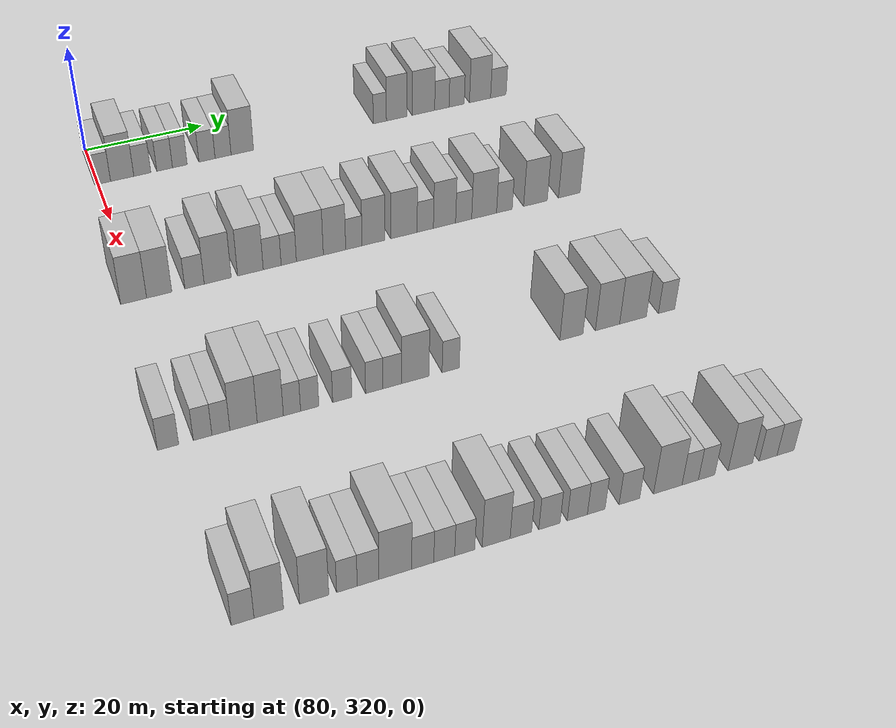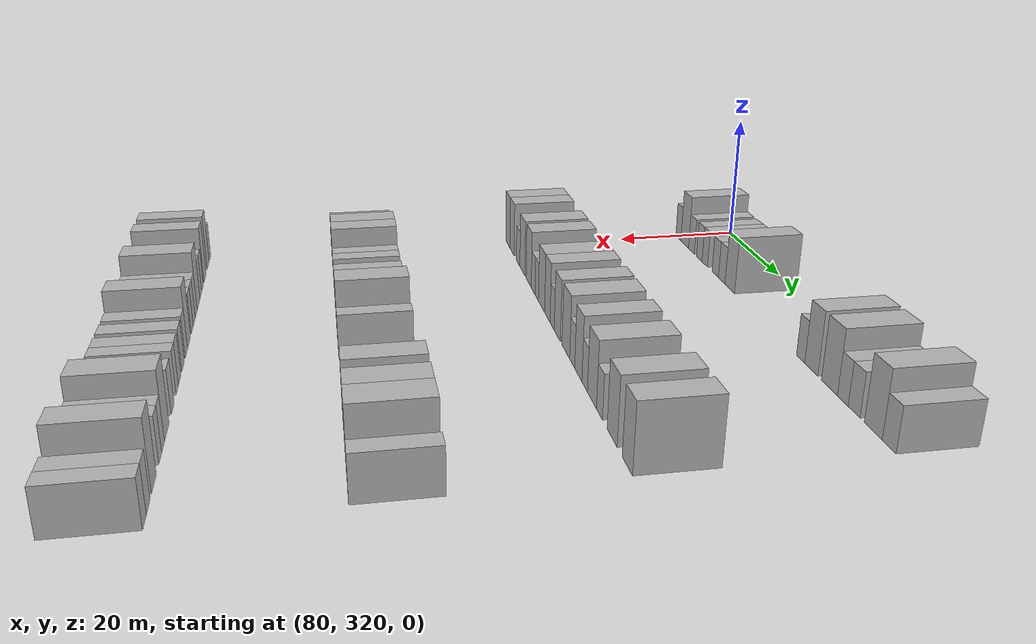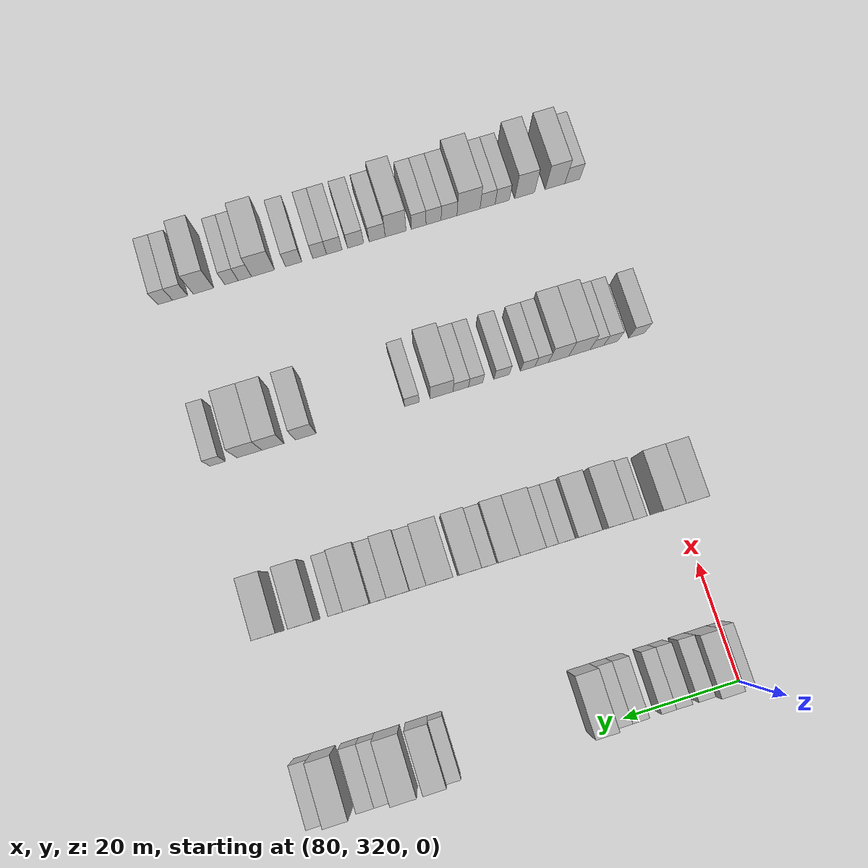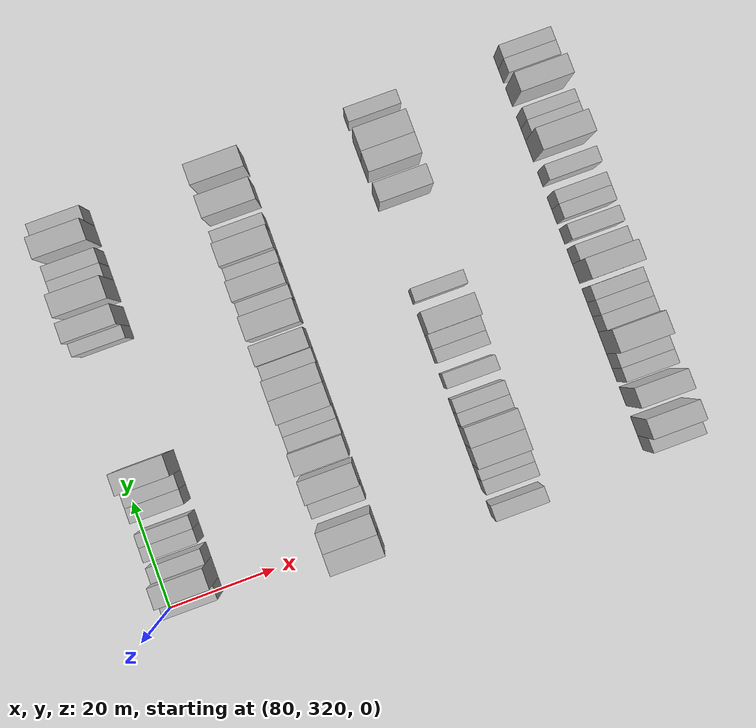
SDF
<sdf version="1.6">
 <world name="default">
  <model name="building_638">
   <static>1</static>
   <pose>85.0000 320.8134 0 0.000000 0.000000 0.000000</pose>
   <link name="link">
    <pose>0 0 3.00 0 0 0</pose>
    <collision name="collision"><geometry><box><size>10.0000 2.6389 6.0000</size></box></geometry></collision>
    <visual name="visual">
     <cast_shadows>0</cast_shadows>
     <geometry><box><size>10.0000 2.6389 6.0000</size></box></geometry>
     <material>
      <script>
       <uri>model://HANNAS_wall/materials/scripts</uri>
       <uri>model://HANNAS_wall/materials/textures</uri>
       <name>vrc/HANNAS_wall</name>
      </script>
     </material>
    </visual>
   </link>
  </model>
  <model name="building_639">
   <static>1</static>
   <pose>85.0000 324.0642 0 0.000000 0.000000 0.000000</pose>
   <link name="link">
    <pose>0 0 4.50 0 0 0</pose>
    <collision name="collision"><geometry><box><size>10.0000 3.8629 9.0000</size></box></geometry></collision>
    <visual name="visual">
     <cast_shadows>0</cast_shadows>
     <geometry><box><size>10.0000 3.8629 9.0000</size></box></geometry>
     <material>
      <script>
       <uri>model://HANNAS_wall/materials/scripts</uri>
       <uri>model://HANNAS_wall/materials/textures</uri>
       <name>vrc/HANNAS_wall</name>
      </script>
     </material>
    </visual>
   </link>
  </model>
  <model name="building_640">
   <static>1</static>
   <pose>85.0000 327.4183 0 0.000000 0.000000 0.000000</pose>
   <link name="link">
    <pose>0 0 3.00 0 0 0</pose>
    <collision name="collision"><geometry><box><size>10.0000 2.8453 6.0000</size></box></geometry></collision>
    <visual name="visual">
     <cast_shadows>0</cast_shadows>
     <geometry><box><size>10.0000 2.8453 6.0000</size></box></geometry>
     <material>
      <script>
       <uri>model://HANNAS_wall/materials/scripts</uri>
       <uri>model://HANNAS_wall/materials/textures</uri>
       <name>vrc/HANNAS_wall</name>
      </script>
     </material>
    </visual>
   </link>
  </model>
  <model name="building_641">
   <static>1</static>
   <pose>85.0000 331.1667 0 0.000000 0.000000 0.000000</pose>
   <link name="link">
    <pose>0 0 3.00 0 0 0</pose>
    <collision name="collision"><geometry><box><size>10.0000 2.6513 6.0000</size></box></geometry></collision>
    <visual name="visual">
     <cast_shadows>0</cast_shadows>
     <geometry><box><size>10.0000 2.6513 6.0000</size></box></geometry>
     <material>
      <script>
       <uri>model://HANNAS_wall/materials/scripts</uri>
       <uri>model://HANNAS_wall/materials/textures</uri>
       <name>vrc/HANNAS_wall</name>
      </script>
     </material>
    </visual>
   </link>
  </model>
  <model name="building_642">
   <static>1</static>
   <pose>85.0000 333.7397 0 0.000000 0.000000 0.000000</pose>
   <link name="link">
    <pose>0 0 3.00 0 0 0</pose>
    <collision name="collision"><geometry><box><size>10.0000 2.4948 6.0000</size></box></geometry></collision>
    <visual name="visual">
     <cast_shadows>0</cast_shadows>
     <geometry><box><size>10.0000 2.4948 6.0000</size></box></geometry>
     <material>
      <script>
       <uri>model://HANNAS_wall/materials/scripts</uri>
       <uri>model://HANNAS_wall/materials/textures</uri>
       <name>vrc/HANNAS_wall</name>
      </script>
     </material>
    </visual>
   </link>
  </model>
  <model name="building_643">
   <static>1</static>
   <pose>85.0000 338.3796 0 0.000000 0.000000 0.000000</pose>
   <link name="link">
    <pose>0 0 3.00 0 0 0</pose>
    <collision name="collision"><geometry><box><size>10.0000 2.7849 6.0000</size></box></geometry></collision>
    <visual name="visual">
     <cast_shadows>0</cast_shadows>
     <geometry><box><size>10.0000 2.7849 6.0000</size></box></geometry>
     <material>
      <script>
       <uri>model://HANNAS_wall/materials/scripts</uri>
       <uri>model://HANNAS_wall/materials/textures</uri>
       <name>vrc/HANNAS_wall</name>
      </script>
     </material>
    </visual>
   </link>
  </model>
  <model name="building_644">
   <static>1</static>
   <pose>85.0000 341.1564 0 0.000000 0.000000 0.000000</pose>
   <link name="link">
    <pose>0 0 3.00 0 0 0</pose>
    <collision name="collision"><geometry><box><size>10.0000 2.7686 6.0000</size></box></geometry></collision>
    <visual name="visual">
     <cast_shadows>0</cast_shadows>
     <geometry><box><size>10.0000 2.7686 6.0000</size></box></geometry>
     <material>
      <script>
       <uri>model://HANNAS_wall/materials/scripts</uri>
       <uri>model://HANNAS_wall/materials/textures</uri>
       <name>vrc/HANNAS_wall</name>
      </script>
     </material>
    </visual>
   </link>
  </model>
  <model name="building_645">
   <static>1</static>
   <pose>85.0000 344.4911 0 0.000000 0.000000 0.000000</pose>
   <link name="link">
    <pose>0 0 4.50 0 0 0</pose>
    <collision name="collision"><geometry><box><size>10.0000 3.9009 9.0000</size></box></geometry></collision>
    <visual name="visual">
     <cast_shadows>0</cast_shadows>
     <geometry><box><size>10.0000 3.9009 9.0000</size></box></geometry>
     <material>
      <script>
       <uri>model://HANNAS_wall/materials/scripts</uri>
       <uri>model://HANNAS_wall/materials/textures</uri>
       <name>vrc/HANNAS_wall</name>
      </script>
     </material>
    </visual>
   </link>
  </model>
  <model name="building_646">
   <static>1</static>
   <pose>85.0000 369.0881 0 0.000000 0.000000 0.000000</pose>
   <link name="link">
    <pose>0 0 3.00 0 0 0</pose>
    <collision name="collision"><geometry><box><size>10.0000 2.4310 6.0000</size></box></geometry></collision>
    <visual name="visual">
     <cast_shadows>0</cast_shadows>
     <geometry><box><size>10.0000 2.4310 6.0000</size></box></geometry>
     <material>
      <script>
       <uri>model://HANNAS_wall/materials/scripts</uri>
       <uri>model://HANNAS_wall/materials/textures</uri>
       <name>vrc/HANNAS_wall</name>
      </script>
     </material>
    </visual>
   </link>
  </model>
  <model name="building_647">
   <static>1</static>
   <pose>85.0000 372.1774 0 0.000000 0.000000 0.000000</pose>
   <link name="link">
    <pose>0 0 4.50 0 0 0</pose>
    <collision name="collision"><geometry><box><size>10.0000 3.7474 9.0000</size></box></geometry></collision>
    <visual name="visual">
     <cast_shadows>0</cast_shadows>
     <geometry><box><size>10.0000 3.7474 9.0000</size></box></geometry>
     <material>
      <script>
       <uri>model://HANNAS_wall/materials/scripts</uri>
       <uri>model://HANNAS_wall/materials/textures</uri>
       <name>vrc/HANNAS_wall</name>
      </script>
     </material>
    </visual>
   </link>
  </model>
  <model name="building_648">
   <static>1</static>
   <pose>85.0000 377.1681 0 0.000000 0.000000 0.000000</pose>
   <link name="link">
    <pose>0 0 4.50 0 0 0</pose>
    <collision name="collision"><geometry><box><size>10.0000 4.2341 9.0000</size></box></geometry></collision>
    <visual name="visual">
     <cast_shadows>0</cast_shadows>
     <geometry><box><size>10.0000 4.2341 9.0000</size></box></geometry>
     <material>
      <script>
       <uri>model://HANNAS_wall/materials/scripts</uri>
       <uri>model://HANNAS_wall/materials/textures</uri>
       <name>vrc/HANNAS_wall</name>
      </script>
     </material>
    </visual>
   </link>
  </model>
  <model name="building_649">
   <static>1</static>
   <pose>85.0000 380.6390 0 0.000000 0.000000 0.000000</pose>
   <link name="link">
    <pose>0 0 3.00 0 0 0</pose>
    <collision name="collision"><geometry><box><size>10.0000 2.7076 6.0000</size></box></geometry></collision>
    <visual name="visual">
     <cast_shadows>0</cast_shadows>
     <geometry><box><size>10.0000 2.7076 6.0000</size></box></geometry>
     <material>
      <script>
       <uri>model://HANNAS_wall/materials/scripts</uri>
       <uri>model://HANNAS_wall/materials/textures</uri>
       <name>vrc/HANNAS_wall</name>
      </script>
     </material>
    </visual>
   </link>
  </model>
  <model name="building_650">
   <static>1</static>
   <pose>85.0000 383.4345 0 0.000000 0.000000 0.000000</pose>
   <link name="link">
    <pose>0 0 3.00 0 0 0</pose>
    <collision name="collision"><geometry><box><size>10.0000 2.8833 6.0000</size></box></geometry></collision>
    <visual name="visual">
     <cast_shadows>0</cast_shadows>
     <geometry><box><size>10.0000 2.8833 6.0000</size></box></geometry>
     <material>
      <script>
       <uri>model://HANNAS_wall/materials/scripts</uri>
       <uri>model://HANNAS_wall/materials/textures</uri>
       <name>vrc/HANNAS_wall</name>
      </script>
     </material>
    </visual>
   </link>
  </model>
  <model name="building_651">
   <static>1</static>
   <pose>85.0000 387.8967 0 0.000000 0.000000 0.000000</pose>
   <link name="link">
    <pose>0 0 4.50 0 0 0</pose>
    <collision name="collision"><geometry><box><size>10.0000 4.0411 9.0000</size></box></geometry></collision>
    <visual name="visual">
     <cast_shadows>0</cast_shadows>
     <geometry><box><size>10.0000 4.0411 9.0000</size></box></geometry>
     <material>
      <script>
       <uri>model://HANNAS_wall/materials/scripts</uri>
       <uri>model://HANNAS_wall/materials/textures</uri>
       <name>vrc/HANNAS_wall</name>
      </script>
     </material>
    </visual>
   </link>
  </model>
  <model name="building_652">
   <static>1</static>
   <pose>85.0000 391.4169 0 0.000000 0.000000 0.000000</pose>
   <link name="link">
    <pose>0 0 3.00 0 0 0</pose>
    <collision name="collision"><geometry><box><size>10.0000 2.9995 6.0000</size></box></geometry></collision>
    <visual name="visual">
     <cast_shadows>0</cast_shadows>
     <geometry><box><size>10.0000 2.9995 6.0000</size></box></geometry>
     <material>
      <script>
       <uri>model://HANNAS_wall/materials/scripts</uri>
       <uri>model://HANNAS_wall/materials/textures</uri>
       <name>vrc/HANNAS_wall</name>
      </script>
     </material>
    </visual>
   </link>
  </model>
  <model name="building_860">
   <static>1</static>
   <pose>115.0000 319.0951 0 0.000000 0.000000 0.000000</pose>
   <link name="link">
    <pose>0 0 4.50 0 0 0</pose>
    <collision name="collision"><geometry><box><size>10.0000 3.9156 9.0000</size></box></geometry></collision>
    <visual name="visual">
     <cast_shadows>0</cast_shadows>
     <geometry><box><size>10.0000 3.9156 9.0000</size></box></geometry>
     <material>
      <script>
       <uri>model://HANNAS_wall/materials/scripts</uri>
       <uri>model://HANNAS_wall/materials/textures</uri>
       <name>vrc/HANNAS_wall</name>
      </script>
     </material>
    </visual>
   </link>
  </model>
  <model name="building_861">
   <static>1</static>
   <pose>115.0000 322.9667 0 0.000000 0.000000 0.000000</pose>
   <link name="link">
    <pose>0 0 4.50 0 0 0</pose>
    <collision name="collision"><geometry><box><size>10.0000 3.8276 9.0000</size></box></geometry></collision>
    <visual name="visual">
     <cast_shadows>0</cast_shadows>
     <geometry><box><size>10.0000 3.8276 9.0000</size></box></geometry>
     <material>
      <script>
       <uri>model://HANNAS_wall/materials/scripts</uri>
       <uri>model://HANNAS_wall/materials/textures</uri>
       <name>vrc/HANNAS_wall</name>
      </script>
     </material>
    </visual>
   </link>
  </model>
  <model name="building_862">
   <static>1</static>
   <pose>115.0000 328.3688 0 0.000000 0.000000 0.000000</pose>
   <link name="link">
    <pose>0 0 3.00 0 0 0</pose>
    <collision name="collision"><geometry><box><size>10.0000 2.9766 6.0000</size></box></geometry></collision>
    <visual name="visual">
     <cast_shadows>0</cast_shadows>
     <geometry><box><size>10.0000 2.9766 6.0000</size></box></geometry>
     <material>
      <script>
       <uri>model://HANNAS_wall/materials/scripts</uri>
       <uri>model://HANNAS_wall/materials/textures</uri>
       <name>vrc/HANNAS_wall</name>
      </script>
     </material>
    </visual>
   </link>
  </model>
  <model name="building_863">
   <static>1</static>
   <pose>115.0000 331.9577 0 0.000000 0.000000 0.000000</pose>
   <link name="link">
    <pose>0 0 4.50 0 0 0</pose>
    <collision name="collision"><geometry><box><size>10.0000 4.2013 9.0000</size></box></geometry></collision>
    <visual name="visual">
     <cast_shadows>0</cast_shadows>
     <geometry><box><size>10.0000 4.2013 9.0000</size></box></geometry>
     <material>
      <script>
       <uri>model://HANNAS_wall/materials/scripts</uri>
       <uri>model://HANNAS_wall/materials/textures</uri>
       <name>vrc/HANNAS_wall</name>
      </script>
     </material>
    </visual>
   </link>
  </model>
  <model name="building_864">
   <static>1</static>
   <pose>115.0000 337.0785 0 0.000000 0.000000 0.000000</pose>
   <link name="link">
    <pose>0 0 4.50 0 0 0</pose>
    <collision name="collision"><geometry><box><size>10.0000 4.0403 9.0000</size></box></geometry></collision>
    <visual name="visual">
     <cast_shadows>0</cast_shadows>
     <geometry><box><size>10.0000 4.0403 9.0000</size></box></geometry>
     <material>
      <script>
       <uri>model://HANNAS_wall/materials/scripts</uri>
       <uri>model://HANNAS_wall/materials/textures</uri>
       <name>vrc/HANNAS_wall</name>
      </script>
     </material>
    </visual>
   </link>
  </model>
  <model name="building_865">
   <static>1</static>
   <pose>115.0000 340.5196 0 0.000000 0.000000 0.000000</pose>
   <link name="link">
    <pose>0 0 3.00 0 0 0</pose>
    <collision name="collision"><geometry><box><size>10.0000 2.8419 6.0000</size></box></geometry></collision>
    <visual name="visual">
     <cast_shadows>0</cast_shadows>
     <geometry><box><size>10.0000 2.8419 6.0000</size></box></geometry>
     <material>
      <script>
       <uri>model://HANNAS_wall/materials/scripts</uri>
       <uri>model://HANNAS_wall/materials/textures</uri>
       <name>vrc/HANNAS_wall</name>
      </script>
     </material>
    </visual>
   </link>
  </model>
  <model name="building_866">
   <static>1</static>
   <pose>115.0000 343.1594 0 0.000000 0.000000 0.000000</pose>
   <link name="link">
    <pose>0 0 3.00 0 0 0</pose>
    <collision name="collision"><geometry><box><size>10.0000 2.4377 6.0000</size></box></geometry></collision>
    <visual name="visual">
     <cast_shadows>0</cast_shadows>
     <geometry><box><size>10.0000 2.4377 6.0000</size></box></geometry>
     <material>
      <script>
       <uri>model://HANNAS_wall/materials/scripts</uri>
       <uri>model://HANNAS_wall/materials/textures</uri>
       <name>vrc/HANNAS_wall</name>
      </script>
     </material>
    </visual>
   </link>
  </model>
  <model name="building_867">
   <static>1</static>
   <pose>115.0000 346.5483 0 0.000000 0.000000 0.000000</pose>
   <link name="link">
    <pose>0 0 4.50 0 0 0</pose>
    <collision name="collision"><geometry><box><size>10.0000 4.3402 9.0000</size></box></geometry></collision>
    <visual name="visual">
     <cast_shadows>0</cast_shadows>
     <geometry><box><size>10.0000 4.3402 9.0000</size></box></geometry>
     <material>
      <script>
       <uri>model://HANNAS_wall/materials/scripts</uri>
       <uri>model://HANNAS_wall/materials/textures</uri>
       <name>vrc/HANNAS_wall</name>
      </script>
     </material>
    </visual>
   </link>
  </model>
  <model name="building_868">
   <static>1</static>
   <pose>115.0000 350.5420 0 0.000000 0.000000 0.000000</pose>
   <link name="link">
    <pose>0 0 4.50 0 0 0</pose>
    <collision name="collision"><geometry><box><size>10.0000 3.6472 9.0000</size></box></geometry></collision>
    <visual name="visual">
     <cast_shadows>0</cast_shadows>
     <geometry><box><size>10.0000 3.6472 9.0000</size></box></geometry>
     <material>
      <script>
       <uri>model://HANNAS_wall/materials/scripts</uri>
       <uri>model://HANNAS_wall/materials/textures</uri>
       <name>vrc/HANNAS_wall</name>
      </script>
     </material>
    </visual>
   </link>
  </model>
  <model name="building_869">
   <static>1</static>
   <pose>115.0000 353.7113 0 0.000000 0.000000 0.000000</pose>
   <link name="link">
    <pose>0 0 3.00 0 0 0</pose>
    <collision name="collision"><geometry><box><size>10.0000 2.6912 6.0000</size></box></geometry></collision>
    <visual name="visual">
     <cast_shadows>0</cast_shadows>
     <geometry><box><size>10.0000 2.6912 6.0000</size></box></geometry>
     <material>
      <script>
       <uri>model://HANNAS_wall/materials/scripts</uri>
       <uri>model://HANNAS_wall/materials/textures</uri>
       <name>vrc/HANNAS_wall</name>
      </script>
     </material>
    </visual>
   </link>
  </model>
  <model name="building_870">
   <static>1</static>
   <pose>115.0000 356.9278 0 0.000000 0.000000 0.000000</pose>
   <link name="link">
    <pose>0 0 4.50 0 0 0</pose>
    <collision name="collision"><geometry><box><size>10.0000 3.7419 9.0000</size></box></geometry></collision>
    <visual name="visual">
     <cast_shadows>0</cast_shadows>
     <geometry><box><size>10.0000 3.7419 9.0000</size></box></geometry>
     <material>
      <script>
       <uri>model://HANNAS_wall/materials/scripts</uri>
       <uri>model://HANNAS_wall/materials/textures</uri>
       <name>vrc/HANNAS_wall</name>
      </script>
     </material>
    </visual>
   </link>
  </model>
  <model name="building_871">
   <static>1</static>
   <pose>115.0000 361.9987 0 0.000000 0.000000 0.000000</pose>
   <link name="link">
    <pose>0 0 4.50 0 0 0</pose>
    <collision name="collision"><geometry><box><size>10.0000 4.3998 9.0000</size></box></geometry></collision>
    <visual name="visual">
     <cast_shadows>0</cast_shadows>
     <geometry><box><size>10.0000 4.3998 9.0000</size></box></geometry>
     <material>
      <script>
       <uri>model://HANNAS_wall/materials/scripts</uri>
       <uri>model://HANNAS_wall/materials/textures</uri>
       <name>vrc/HANNAS_wall</name>
      </script>
     </material>
    </visual>
   </link>
  </model>
  <model name="building_872">
   <static>1</static>
   <pose>115.0000 365.5794 0 0.000000 0.000000 0.000000</pose>
   <link name="link">
    <pose>0 0 3.00 0 0 0</pose>
    <collision name="collision"><geometry><box><size>10.0000 2.7616 6.0000</size></box></geometry></collision>
    <visual name="visual">
     <cast_shadows>0</cast_shadows>
     <geometry><box><size>10.0000 2.7616 6.0000</size></box></geometry>
     <material>
      <script>
       <uri>model://HANNAS_wall/materials/scripts</uri>
       <uri>model://HANNAS_wall/materials/textures</uri>
       <name>vrc/HANNAS_wall</name>
      </script>
     </material>
    </visual>
   </link>
  </model>
  <model name="building_873">
   <static>1</static>
   <pose>115.0000 368.8501 0 0.000000 0.000000 0.000000</pose>
   <link name="link">
    <pose>0 0 4.50 0 0 0</pose>
    <collision name="collision"><geometry><box><size>10.0000 3.7798 9.0000</size></box></geometry></collision>
    <visual name="visual">
     <cast_shadows>0</cast_shadows>
     <geometry><box><size>10.0000 3.7798 9.0000</size></box></geometry>
     <material>
      <script>
       <uri>model://HANNAS_wall/materials/scripts</uri>
       <uri>model://HANNAS_wall/materials/textures</uri>
       <name>vrc/HANNAS_wall</name>
      </script>
     </material>
    </visual>
   </link>
  </model>
  <model name="building_874">
   <static>1</static>
   <pose>115.0000 372.1155 0 0.000000 0.000000 0.000000</pose>
   <link name="link">
    <pose>0 0 3.00 0 0 0</pose>
    <collision name="collision"><geometry><box><size>10.0000 2.7510 6.0000</size></box></geometry></collision>
    <visual name="visual">
     <cast_shadows>0</cast_shadows>
     <geometry><box><size>10.0000 2.7510 6.0000</size></box></geometry>
     <material>
      <script>
       <uri>model://HANNAS_wall/materials/scripts</uri>
       <uri>model://HANNAS_wall/materials/textures</uri>
       <name>vrc/HANNAS_wall</name>
      </script>
     </material>
    </visual>
   </link>
  </model>
  <model name="building_875">
   <static>1</static>
   <pose>115.0000 375.6452 0 0.000000 0.000000 0.000000</pose>
   <link name="link">
    <pose>0 0 4.50 0 0 0</pose>
    <collision name="collision"><geometry><box><size>10.0000 4.3083 9.0000</size></box></geometry></collision>
    <visual name="visual">
     <cast_shadows>0</cast_shadows>
     <geometry><box><size>10.0000 4.3083 9.0000</size></box></geometry>
     <material>
      <script>
       <uri>model://HANNAS_wall/materials/scripts</uri>
       <uri>model://HANNAS_wall/materials/textures</uri>
       <name>vrc/HANNAS_wall</name>
      </script>
     </material>
    </visual>
   </link>
  </model>
  <model name="building_876">
   <static>1</static>
   <pose>115.0000 379.1656 0 0.000000 0.000000 0.000000</pose>
   <link name="link">
    <pose>0 0 3.00 0 0 0</pose>
    <collision name="collision"><geometry><box><size>10.0000 2.7325 6.0000</size></box></geometry></collision>
    <visual name="visual">
     <cast_shadows>0</cast_shadows>
     <geometry><box><size>10.0000 2.7325 6.0000</size></box></geometry>
     <material>
      <script>
       <uri>model://HANNAS_wall/materials/scripts</uri>
       <uri>model://HANNAS_wall/materials/textures</uri>
       <name>vrc/HANNAS_wall</name>
      </script>
     </material>
    </visual>
   </link>
  </model>
  <model name="building_877">
   <static>1</static>
   <pose>115.0000 384.6185 0 0.000000 0.000000 0.000000</pose>
   <link name="link">
    <pose>0 0 4.50 0 0 0</pose>
    <collision name="collision"><geometry><box><size>10.0000 4.1733 9.0000</size></box></geometry></collision>
    <visual name="visual">
     <cast_shadows>0</cast_shadows>
     <geometry><box><size>10.0000 4.1733 9.0000</size></box></geometry>
     <material>
      <script>
       <uri>model://HANNAS_wall/materials/scripts</uri>
       <uri>model://HANNAS_wall/materials/textures</uri>
       <name>vrc/HANNAS_wall</name>
      </script>
     </material>
    </visual>
   </link>
  </model>
  <model name="building_878">
   <static>1</static>
   <pose>115.0000 390.6435 0 0.000000 0.000000 0.000000</pose>
   <link name="link">
    <pose>0 0 4.50 0 0 0</pose>
    <collision name="collision"><geometry><box><size>10.0000 3.8768 9.0000</size></box></geometry></collision>
    <visual name="visual">
     <cast_shadows>0</cast_shadows>
     <geometry><box><size>10.0000 3.8768 9.0000</size></box></geometry>
     <material>
      <script>
       <uri>model://HANNAS_wall/materials/scripts</uri>
       <uri>model://HANNAS_wall/materials/textures</uri>
       <name>vrc/HANNAS_wall</name>
      </script>
     </material>
    </visual>
   </link>
  </model>
  <model name="building_1084">
   <static>1</static>
   <pose>145.0000 316.8757 0 0.000000 0.000000 0.000000</pose>
   <link name="link">
    <pose>0 0 3.00 0 0 0</pose>
    <collision name="collision"><geometry><box><size>10.0000 2.8873 6.0000</size></box></geometry></collision>
    <visual name="visual">
     <cast_shadows>0</cast_shadows>
     <geometry><box><size>10.0000 2.8873 6.0000</size></box></geometry>
     <material>
      <script>
       <uri>model://HANNAS_wall/materials/scripts</uri>
       <uri>model://HANNAS_wall/materials/textures</uri>
       <name>vrc/HANNAS_wall</name>
      </script>
     </material>
    </visual>
   </link>
  </model>
  <model name="building_1085">
   <static>1</static>
   <pose>145.0000 321.6036 0 0.000000 0.000000 0.000000</pose>
   <link name="link">
    <pose>0 0 3.00 0 0 0</pose>
    <collision name="collision"><geometry><box><size>10.0000 2.5685 6.0000</size></box></geometry></collision>
    <visual name="visual">
     <cast_shadows>0</cast_shadows>
     <geometry><box><size>10.0000 2.5685 6.0000</size></box></geometry>
     <material>
      <script>
       <uri>model://HANNAS_wall/materials/scripts</uri>
       <uri>model://HANNAS_wall/materials/textures</uri>
       <name>vrc/HANNAS_wall</name>
      </script>
     </material>
    </visual>
   </link>
  </model>
  <model name="building_1086">
   <static>1</static>
   <pose>145.0000 324.1308 0 0.000000 0.000000 0.000000</pose>
   <link name="link">
    <pose>0 0 3.00 0 0 0</pose>
    <collision name="collision"><geometry><box><size>10.0000 2.4858 6.0000</size></box></geometry></collision>
    <visual name="visual">
     <cast_shadows>0</cast_shadows>
     <geometry><box><size>10.0000 2.4858 6.0000</size></box></geometry>
     <material>
      <script>
       <uri>model://HANNAS_wall/materials/scripts</uri>
       <uri>model://HANNAS_wall/materials/textures</uri>
       <name>vrc/HANNAS_wall</name>
      </script>
     </material>
    </visual>
   </link>
  </model>
  <model name="building_1087">
   <static>1</static>
   <pose>145.0000 327.2934 0 0.000000 0.000000 0.000000</pose>
   <link name="link">
    <pose>0 0 4.50 0 0 0</pose>
    <collision name="collision"><geometry><box><size>10.0000 3.8396 9.0000</size></box></geometry></collision>
    <visual name="visual">
     <cast_shadows>0</cast_shadows>
     <geometry><box><size>10.0000 3.8396 9.0000</size></box></geometry>
     <material>
      <script>
       <uri>model://HANNAS_wall/materials/scripts</uri>
       <uri>model://HANNAS_wall/materials/textures</uri>
       <name>vrc/HANNAS_wall</name>
      </script>
     </material>
    </visual>
   </link>
  </model>
  <model name="building_1088">
   <static>1</static>
   <pose>145.0000 331.0576 0 0.000000 0.000000 0.000000</pose>
   <link name="link">
    <pose>0 0 4.50 0 0 0</pose>
    <collision name="collision"><geometry><box><size>10.0000 3.6888 9.0000</size></box></geometry></collision>
    <visual name="visual">
     <cast_shadows>0</cast_shadows>
     <geometry><box><size>10.0000 3.6888 9.0000</size></box></geometry>
     <material>
      <script>
       <uri>model://HANNAS_wall/materials/scripts</uri>
       <uri>model://HANNAS_wall/materials/textures</uri>
       <name>vrc/HANNAS_wall</name>
      </script>
     </material>
    </visual>
   </link>
  </model>
  <model name="building_1089">
   <static>1</static>
   <pose>145.0000 334.1280 0 0.000000 0.000000 0.000000</pose>
   <link name="link">
    <pose>0 0 3.00 0 0 0</pose>
    <collision name="collision"><geometry><box><size>10.0000 2.4520 6.0000</size></box></geometry></collision>
    <visual name="visual">
     <cast_shadows>0</cast_shadows>
     <geometry><box><size>10.0000 2.4520 6.0000</size></box></geometry>
     <material>
      <script>
       <uri>model://HANNAS_wall/materials/scripts</uri>
       <uri>model://HANNAS_wall/materials/textures</uri>
       <name>vrc/HANNAS_wall</name>
      </script>
     </material>
    </visual>
   </link>
  </model>
  <model name="building_1090">
   <static>1</static>
   <pose>145.0000 336.6666 0 0.000000 0.000000 0.000000</pose>
   <link name="link">
    <pose>0 0 3.00 0 0 0</pose>
    <collision name="collision"><geometry><box><size>10.0000 2.6251 6.0000</size></box></geometry></collision>
    <visual name="visual">
     <cast_shadows>0</cast_shadows>
     <geometry><box><size>10.0000 2.6251 6.0000</size></box></geometry>
     <material>
      <script>
       <uri>model://HANNAS_wall/materials/scripts</uri>
       <uri>model://HANNAS_wall/materials/textures</uri>
       <name>vrc/HANNAS_wall</name>
      </script>
     </material>
    </visual>
   </link>
  </model>
  <model name="building_1091">
   <static>1</static>
   <pose>145.0000 341.3764 0 0.000000 0.000000 0.000000</pose>
   <link name="link">
    <pose>0 0 3.00 0 0 0</pose>
    <collision name="collision"><geometry><box><size>10.0000 2.7947 6.0000</size></box></geometry></collision>
    <visual name="visual">
     <cast_shadows>0</cast_shadows>
     <geometry><box><size>10.0000 2.7947 6.0000</size></box></geometry>
     <material>
      <script>
       <uri>model://HANNAS_wall/materials/scripts</uri>
       <uri>model://HANNAS_wall/materials/textures</uri>
       <name>vrc/HANNAS_wall</name>
      </script>
     </material>
    </visual>
   </link>
  </model>
  <model name="building_1092">
   <static>1</static>
   <pose>145.0000 346.0486 0 0.000000 0.000000 0.000000</pose>
   <link name="link">
    <pose>0 0 3.00 0 0 0</pose>
    <collision name="collision"><geometry><box><size>10.0000 2.5498 6.0000</size></box></geometry></collision>
    <visual name="visual">
     <cast_shadows>0</cast_shadows>
     <geometry><box><size>10.0000 2.5498 6.0000</size></box></geometry>
     <material>
      <script>
       <uri>model://HANNAS_wall/materials/scripts</uri>
       <uri>model://HANNAS_wall/materials/textures</uri>
       <name>vrc/HANNAS_wall</name>
      </script>
     </material>
    </visual>
   </link>
  </model>
  <model name="building_1093">
   <static>1</static>
   <pose>145.0000 348.7180 0 0.000000 0.000000 0.000000</pose>
   <link name="link">
    <pose>0 0 3.00 0 0 0</pose>
    <collision name="collision"><geometry><box><size>10.0000 2.7890 6.0000</size></box></geometry></collision>
    <visual name="visual">
     <cast_shadows>0</cast_shadows>
     <geometry><box><size>10.0000 2.7890 6.0000</size></box></geometry>
     <material>
      <script>
       <uri>model://HANNAS_wall/materials/scripts</uri>
       <uri>model://HANNAS_wall/materials/textures</uri>
       <name>vrc/HANNAS_wall</name>
      </script>
     </material>
    </visual>
   </link>
  </model>
  <model name="building_1094">
   <static>1</static>
   <pose>145.0000 352.1489 0 0.000000 0.000000 0.000000</pose>
   <link name="link">
    <pose>0 0 4.50 0 0 0</pose>
    <collision name="collision"><geometry><box><size>10.0000 4.0727 9.0000</size></box></geometry></collision>
    <visual name="visual">
     <cast_shadows>0</cast_shadows>
     <geometry><box><size>10.0000 4.0727 9.0000</size></box></geometry>
     <material>
      <script>
       <uri>model://HANNAS_wall/materials/scripts</uri>
       <uri>model://HANNAS_wall/materials/textures</uri>
       <name>vrc/HANNAS_wall</name>
      </script>
     </material>
    </visual>
   </link>
  </model>
  <model name="building_1095">
   <static>1</static>
   <pose>145.0000 357.4786 0 0.000000 0.000000 0.000000</pose>
   <link name="link">
    <pose>0 0 3.00 0 0 0</pose>
    <collision name="collision"><geometry><box><size>10.0000 2.5867 6.0000</size></box></geometry></collision>
    <visual name="visual">
     <cast_shadows>0</cast_shadows>
     <geometry><box><size>10.0000 2.5867 6.0000</size></box></geometry>
     <material>
      <script>
       <uri>model://HANNAS_wall/materials/scripts</uri>
       <uri>model://HANNAS_wall/materials/textures</uri>
       <name>vrc/HANNAS_wall</name>
      </script>
     </material>
    </visual>
   </link>
  </model>
  <model name="building_1096">
   <static>1</static>
   <pose>145.0000 376.3088 0 0.000000 0.000000 0.000000</pose>
   <link name="link">
    <pose>0 0 4.50 0 0 0</pose>
    <collision name="collision"><geometry><box><size>10.0000 3.6912 9.0000</size></box></geometry></collision>
    <visual name="visual">
     <cast_shadows>0</cast_shadows>
     <geometry><box><size>10.0000 3.6912 9.0000</size></box></geometry>
     <material>
      <script>
       <uri>model://HANNAS_wall/materials/scripts</uri>
       <uri>model://HANNAS_wall/materials/textures</uri>
       <name>vrc/HANNAS_wall</name>
      </script>
     </material>
    </visual>
   </link>
  </model>
  <model name="building_1097">
   <static>1</static>
   <pose>145.0000 382.1188 0 0.000000 0.000000 0.000000</pose>
   <link name="link">
    <pose>0 0 4.50 0 0 0</pose>
    <collision name="collision"><geometry><box><size>10.0000 3.9289 9.0000</size></box></geometry></collision>
    <visual name="visual">
     <cast_shadows>0</cast_shadows>
     <geometry><box><size>10.0000 3.9289 9.0000</size></box></geometry>
     <material>
      <script>
       <uri>model://HANNAS_wall/materials/scripts</uri>
       <uri>model://HANNAS_wall/materials/textures</uri>
       <name>vrc/HANNAS_wall</name>
      </script>
     </material>
    </visual>
   </link>
  </model>
  <model name="building_1098">
   <static>1</static>
   <pose>145.0000 386.2729 0 0.000000 0.000000 0.000000</pose>
   <link name="link">
    <pose>0 0 4.50 0 0 0</pose>
    <collision name="collision"><geometry><box><size>10.0000 4.3792 9.0000</size></box></geometry></collision>
    <visual name="visual">
     <cast_shadows>0</cast_shadows>
     <geometry><box><size>10.0000 4.3792 9.0000</size></box></geometry>
     <material>
      <script>
       <uri>model://HANNAS_wall/materials/scripts</uri>
       <uri>model://HANNAS_wall/materials/textures</uri>
       <name>vrc/HANNAS_wall</name>
      </script>
     </material>
    </visual>
   </link>
  </model>
  <model name="building_1099">
   <static>1</static>
   <pose>145.0000 391.8205 0 0.000000 0.000000 0.000000</pose>
   <link name="link">
    <pose>0 0 3.00 0 0 0</pose>
    <collision name="collision"><geometry><box><size>10.0000 2.7160 6.0000</size></box></geometry></collision>
    <visual name="visual">
     <cast_shadows>0</cast_shadows>
     <geometry><box><size>10.0000 2.7160 6.0000</size></box></geometry>
     <material>
      <script>
       <uri>model://HANNAS_wall/materials/scripts</uri>
       <uri>model://HANNAS_wall/materials/textures</uri>
       <name>vrc/HANNAS_wall</name>
      </script>
     </material>
    </visual>
   </link>
  </model>
  <model name="building_1307">
   <static>1</static>
   <pose>175.0000 318.4565 0 0.000000 0.000000 0.000000</pose>
   <link name="link">
    <pose>0 0 3.00 0 0 0</pose>
    <collision name="collision"><geometry><box><size>10.0000 2.8024 6.0000</size></box></geometry></collision>
    <visual name="visual">
     <cast_shadows>0</cast_shadows>
     <geometry><box><size>10.0000 2.8024 6.0000</size></box></geometry>
     <material>
      <script>
       <uri>model://HANNAS_wall/materials/scripts</uri>
       <uri>model://HANNAS_wall/materials/textures</uri>
       <name>vrc/HANNAS_wall</name>
      </script>
     </material>
    </visual>
   </link>
  </model>
  <model name="building_1308">
   <static>1</static>
   <pose>175.0000 321.6941 0 0.000000 0.000000 0.000000</pose>
   <link name="link">
    <pose>0 0 4.50 0 0 0</pose>
    <collision name="collision"><geometry><box><size>10.0000 3.6727 9.0000</size></box></geometry></collision>
    <visual name="visual">
     <cast_shadows>0</cast_shadows>
     <geometry><box><size>10.0000 3.6727 9.0000</size></box></geometry>
     <material>
      <script>
       <uri>model://HANNAS_wall/materials/scripts</uri>
       <uri>model://HANNAS_wall/materials/textures</uri>
       <name>vrc/HANNAS_wall</name>
      </script>
     </material>
    </visual>
   </link>
  </model>
  <model name="building_1309">
   <static>1</static>
   <pose>175.0000 327.3723 0 0.000000 0.000000 0.000000</pose>
   <link name="link">
    <pose>0 0 4.50 0 0 0</pose>
    <collision name="collision"><geometry><box><size>10.0000 3.6836 9.0000</size></box></geometry></collision>
    <visual name="visual">
     <cast_shadows>0</cast_shadows>
     <geometry><box><size>10.0000 3.6836 9.0000</size></box></geometry>
     <material>
      <script>
       <uri>model://HANNAS_wall/materials/scripts</uri>
       <uri>model://HANNAS_wall/materials/textures</uri>
       <name>vrc/HANNAS_wall</name>
      </script>
     </material>
    </visual>
   </link>
  </model>
  <model name="building_1310">
   <static>1</static>
   <pose>175.0000 331.5305 0 0.000000 0.000000 0.000000</pose>
   <link name="link">
    <pose>0 0 3.00 0 0 0</pose>
    <collision name="collision"><geometry><box><size>10.0000 2.6329 6.0000</size></box></geometry></collision>
    <visual name="visual">
     <cast_shadows>0</cast_shadows>
     <geometry><box><size>10.0000 2.6329 6.0000</size></box></geometry>
     <material>
      <script>
       <uri>model://HANNAS_wall/materials/scripts</uri>
       <uri>model://HANNAS_wall/materials/textures</uri>
       <name>vrc/HANNAS_wall</name>
      </script>
     </material>
    </visual>
   </link>
  </model>
  <model name="building_1311">
   <static>1</static>
   <pose>175.0000 334.2442 0 0.000000 0.000000 0.000000</pose>
   <link name="link">
    <pose>0 0 3.00 0 0 0</pose>
    <collision name="collision"><geometry><box><size>10.0000 2.7944 6.0000</size></box></geometry></collision>
    <visual name="visual">
     <cast_shadows>0</cast_shadows>
     <geometry><box><size>10.0000 2.7944 6.0000</size></box></geometry>
     <material>
      <script>
       <uri>model://HANNAS_wall/materials/scripts</uri>
       <uri>model://HANNAS_wall/materials/textures</uri>
       <name>vrc/HANNAS_wall</name>
      </script>
     </material>
    </visual>
   </link>
  </model>
  <model name="building_1312">
   <static>1</static>
   <pose>175.0000 337.7763 0 0.000000 0.000000 0.000000</pose>
   <link name="link">
    <pose>0 0 4.50 0 0 0</pose>
    <collision name="collision"><geometry><box><size>10.0000 4.2698 9.0000</size></box></geometry></collision>
    <visual name="visual">
     <cast_shadows>0</cast_shadows>
     <geometry><box><size>10.0000 4.2698 9.0000</size></box></geometry>
     <material>
      <script>
       <uri>model://HANNAS_wall/materials/scripts</uri>
       <uri>model://HANNAS_wall/materials/textures</uri>
       <name>vrc/HANNAS_wall</name>
      </script>
     </material>
    </visual>
   </link>
  </model>
  <model name="building_1313">
   <static>1</static>
   <pose>175.0000 341.3726 0 0.000000 0.000000 0.000000</pose>
   <link name="link">
    <pose>0 0 3.00 0 0 0</pose>
    <collision name="collision"><geometry><box><size>10.0000 2.9229 6.0000</size></box></geometry></collision>
    <visual name="visual">
     <cast_shadows>0</cast_shadows>
     <geometry><box><size>10.0000 2.9229 6.0000</size></box></geometry>
     <material>
      <script>
       <uri>model://HANNAS_wall/materials/scripts</uri>
       <uri>model://HANNAS_wall/materials/textures</uri>
       <name>vrc/HANNAS_wall</name>
      </script>
     </material>
    </visual>
   </link>
  </model>
  <model name="building_1314">
   <static>1</static>
   <pose>175.0000 344.2235 0 0.000000 0.000000 0.000000</pose>
   <link name="link">
    <pose>0 0 3.00 0 0 0</pose>
    <collision name="collision"><geometry><box><size>10.0000 2.7788 6.0000</size></box></geometry></collision>
    <visual name="visual">
     <cast_shadows>0</cast_shadows>
     <geometry><box><size>10.0000 2.7788 6.0000</size></box></geometry>
     <material>
      <script>
       <uri>model://HANNAS_wall/materials/scripts</uri>
       <uri>model://HANNAS_wall/materials/textures</uri>
       <name>vrc/HANNAS_wall</name>
      </script>
     </material>
    </visual>
   </link>
  </model>
  <model name="building_1315">
   <static>1</static>
   <pose>175.0000 346.9526 0 0.000000 0.000000 0.000000</pose>
   <link name="link">
    <pose>0 0 3.00 0 0 0</pose>
    <collision name="collision"><geometry><box><size>10.0000 2.6796 6.0000</size></box></geometry></collision>
    <visual name="visual">
     <cast_shadows>0</cast_shadows>
     <geometry><box><size>10.0000 2.6796 6.0000</size></box></geometry>
     <material>
      <script>
       <uri>model://HANNAS_wall/materials/scripts</uri>
       <uri>model://HANNAS_wall/materials/textures</uri>
       <name>vrc/HANNAS_wall</name>
      </script>
     </material>
    </visual>
   </link>
  </model>
  <model name="building_1316">
   <static>1</static>
   <pose>175.0000 351.1976 0 0.000000 0.000000 0.000000</pose>
   <link name="link">
    <pose>0 0 4.50 0 0 0</pose>
    <collision name="collision"><geometry><box><size>10.0000 3.8104 9.0000</size></box></geometry></collision>
    <visual name="visual">
     <cast_shadows>0</cast_shadows>
     <geometry><box><size>10.0000 3.8104 9.0000</size></box></geometry>
     <material>
      <script>
       <uri>model://HANNAS_wall/materials/scripts</uri>
       <uri>model://HANNAS_wall/materials/textures</uri>
       <name>vrc/HANNAS_wall</name>
      </script>
     </material>
    </visual>
   </link>
  </model>
  <model name="building_1317">
   <static>1</static>
   <pose>175.0000 354.5760 0 0.000000 0.000000 0.000000</pose>
   <link name="link">
    <pose>0 0 3.00 0 0 0</pose>
    <collision name="collision"><geometry><box><size>10.0000 2.9463 6.0000</size></box></geometry></collision>
    <visual name="visual">
     <cast_shadows>0</cast_shadows>
     <geometry><box><size>10.0000 2.9463 6.0000</size></box></geometry>
     <material>
      <script>
       <uri>model://HANNAS_wall/materials/scripts</uri>
       <uri>model://HANNAS_wall/materials/textures</uri>
       <name>vrc/HANNAS_wall</name>
      </script>
     </material>
    </visual>
   </link>
  </model>
  <model name="building_1318">
   <static>1</static>
   <pose>175.0000 358.5231 0 0.000000 0.000000 0.000000</pose>
   <link name="link">
    <pose>0 0 3.00 0 0 0</pose>
    <collision name="collision"><geometry><box><size>10.0000 2.9478 6.0000</size></box></geometry></collision>
    <visual name="visual">
     <cast_shadows>0</cast_shadows>
     <geometry><box><size>10.0000 2.9478 6.0000</size></box></geometry>
     <material>
      <script>
       <uri>model://HANNAS_wall/materials/scripts</uri>
       <uri>model://HANNAS_wall/materials/textures</uri>
       <name>vrc/HANNAS_wall</name>
      </script>
     </material>
    </visual>
   </link>
  </model>
  <model name="building_1319">
   <static>1</static>
   <pose>175.0000 362.4151 0 0.000000 0.000000 0.000000</pose>
   <link name="link">
    <pose>0 0 3.00 0 0 0</pose>
    <collision name="collision"><geometry><box><size>10.0000 2.8361 6.0000</size></box></geometry></collision>
    <visual name="visual">
     <cast_shadows>0</cast_shadows>
     <geometry><box><size>10.0000 2.8361 6.0000</size></box></geometry>
     <material>
      <script>
       <uri>model://HANNAS_wall/materials/scripts</uri>
       <uri>model://HANNAS_wall/materials/textures</uri>
       <name>vrc/HANNAS_wall</name>
      </script>
     </material>
    </visual>
   </link>
  </model>
  <model name="building_1320">
   <static>1</static>
   <pose>175.0000 365.0860 0 0.000000 0.000000 0.000000</pose>
   <link name="link">
    <pose>0 0 3.00 0 0 0</pose>
    <collision name="collision"><geometry><box><size>10.0000 2.5057 6.0000</size></box></geometry></collision>
    <visual name="visual">
     <cast_shadows>0</cast_shadows>
     <geometry><box><size>10.0000 2.5057 6.0000</size></box></geometry>
     <material>
      <script>
       <uri>model://HANNAS_wall/materials/scripts</uri>
       <uri>model://HANNAS_wall/materials/textures</uri>
       <name>vrc/HANNAS_wall</name>
      </script>
     </material>
    </visual>
   </link>
  </model>
  <model name="building_1321">
   <static>1</static>
   <pose>175.0000 369.8204 0 0.000000 0.000000 0.000000</pose>
   <link name="link">
    <pose>0 0 3.00 0 0 0</pose>
    <collision name="collision"><geometry><box><size>10.0000 2.9632 6.0000</size></box></geometry></collision>
    <visual name="visual">
     <cast_shadows>0</cast_shadows>
     <geometry><box><size>10.0000 2.9632 6.0000</size></box></geometry>
     <material>
      <script>
       <uri>model://HANNAS_wall/materials/scripts</uri>
       <uri>model://HANNAS_wall/materials/textures</uri>
       <name>vrc/HANNAS_wall</name>
      </script>
     </material>
    </visual>
   </link>
  </model>
  <model name="building_1322">
   <static>1</static>
   <pose>175.0000 375.3840 0 0.000000 0.000000 0.000000</pose>
   <link name="link">
    <pose>0 0 4.50 0 0 0</pose>
    <collision name="collision"><geometry><box><size>10.0000 4.1639 9.0000</size></box></geometry></collision>
    <visual name="visual">
     <cast_shadows>0</cast_shadows>
     <geometry><box><size>10.0000 4.1639 9.0000</size></box></geometry>
     <material>
      <script>
       <uri>model://HANNAS_wall/materials/scripts</uri>
       <uri>model://HANNAS_wall/materials/textures</uri>
       <name>vrc/HANNAS_wall</name>
      </script>
     </material>
    </visual>
   </link>
  </model>
  <model name="building_1323">
   <static>1</static>
   <pose>175.0000 378.6756 0 0.000000 0.000000 0.000000</pose>
   <link name="link">
    <pose>0 0 3.00 0 0 0</pose>
    <collision name="collision"><geometry><box><size>10.0000 2.4192 6.0000</size></box></geometry></collision>
    <visual name="visual">
     <cast_shadows>0</cast_shadows>
     <geometry><box><size>10.0000 2.4192 6.0000</size></box></geometry>
     <material>
      <script>
       <uri>model://HANNAS_wall/materials/scripts</uri>
       <uri>model://HANNAS_wall/materials/textures</uri>
       <name>vrc/HANNAS_wall</name>
      </script>
     </material>
    </visual>
   </link>
  </model>
  <model name="building_1324">
   <static>1</static>
   <pose>175.0000 381.0992 0 0.000000 0.000000 0.000000</pose>
   <link name="link">
    <pose>0 0 3.00 0 0 0</pose>
    <collision name="collision"><geometry><box><size>10.0000 2.4280 6.0000</size></box></geometry></collision>
    <visual name="visual">
     <cast_shadows>0</cast_shadows>
     <geometry><box><size>10.0000 2.4280 6.0000</size></box></geometry>
     <material>
      <script>
       <uri>model://HANNAS_wall/materials/scripts</uri>
       <uri>model://HANNAS_wall/materials/textures</uri>
       <name>vrc/HANNAS_wall</name>
      </script>
     </material>
    </visual>
   </link>
  </model>
  <model name="building_1325">
   <static>1</static>
   <pose>175.0000 386.1541 0 0.000000 0.000000 0.000000</pose>
   <link name="link">
    <pose>0 0 4.50 0 0 0</pose>
    <collision name="collision"><geometry><box><size>10.0000 3.6818 9.0000</size></box></geometry></collision>
    <visual name="visual">
     <cast_shadows>0</cast_shadows>
     <geometry><box><size>10.0000 3.6818 9.0000</size></box></geometry>
     <material>
      <script>
       <uri>model://HANNAS_wall/materials/scripts</uri>
       <uri>model://HANNAS_wall/materials/textures</uri>
       <name>vrc/HANNAS_wall</name>
      </script>
     </material>
    </visual>
   </link>
  </model>
  <model name="building_1326">
   <static>1</static>
   <pose>175.0000 390.3589 0 0.000000 0.000000 0.000000</pose>
   <link name="link">
    <pose>0 0 3.00 0 0 0</pose>
    <collision name="collision"><geometry><box><size>10.0000 2.7279 6.0000</size></box></geometry></collision>
    <visual name="visual">
     <cast_shadows>0</cast_shadows>
     <geometry><box><size>10.0000 2.7279 6.0000</size></box></geometry>
     <material>
      <script>
       <uri>model://HANNAS_wall/materials/scripts</uri>
       <uri>model://HANNAS_wall/materials/textures</uri>
       <name>vrc/HANNAS_wall</name>
      </script>
     </material>
    </visual>
   </link>
  </model>
  <model name="building_1327">
   <static>1</static>
   <pose>175.0000 393.0263 0 0.000000 0.000000 0.000000</pose>
   <link name="link">
    <pose>0 0 3.00 0 0 0</pose>
    <collision name="collision"><geometry><box><size>10.0000 2.6068 6.0000</size></box></geometry></collision>
    <visual name="visual">
     <cast_shadows>0</cast_shadows>
     <geometry><box><size>10.0000 2.6068 6.0000</size></box></geometry>
     <material>
      <script>
       <uri>model://HANNAS_wall/materials/scripts</uri>
       <uri>model://HANNAS_wall/materials/textures</uri>
       <name>vrc/HANNAS_wall</name>
      </script>
     </material>
    </visual>
   </link>
  </model>
 </world>
</sdf>
